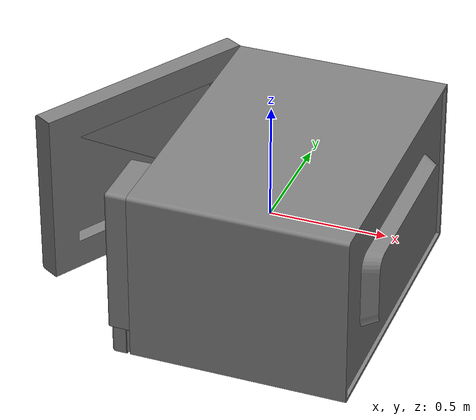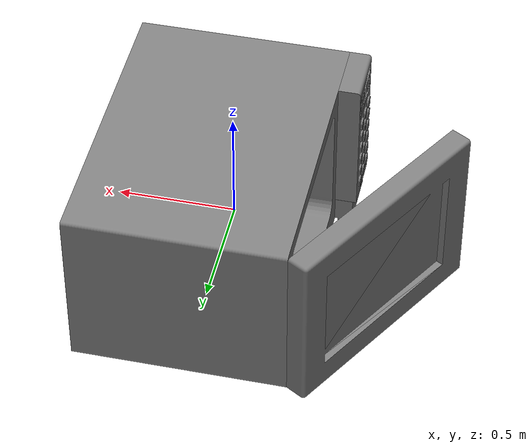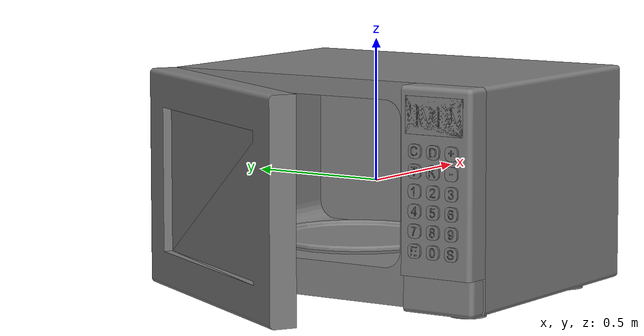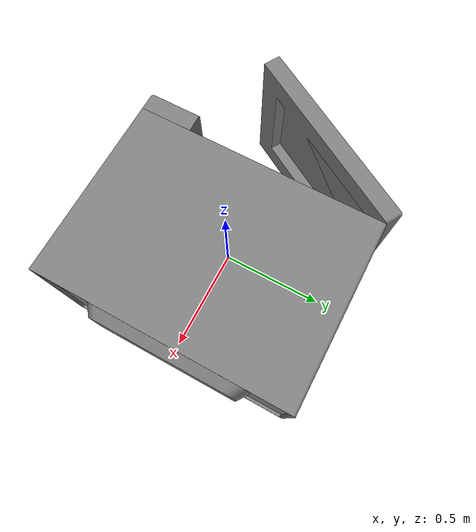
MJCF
<mujoco model="partnet_891f65c773939191c834958aed613724">
    <compiler angle="radian" />
    <size njmax="500" nconmax="100" />
    <asset>
        <mesh name="new-6" file="new-6.stl" />
        <mesh name="new-5" file="new-5.stl" />
        <mesh name="original-3" file="original-3.stl" />
        <mesh name="original-4" file="original-4.stl" />
        <mesh name="original-41" file="original-41.stl" />
        <mesh name="original-36" file="original-36.stl" />
        <mesh name="original-35" file="original-35.stl" />
        <mesh name="original-19" file="original-19.stl" />
        <mesh name="original-42" file="original-42.stl" />
        <mesh name="original-34" file="original-34.stl" />
        <mesh name="original-31" file="original-31.stl" />
        <mesh name="original-18" file="original-18.stl" />
        <mesh name="original-17" file="original-17.stl" />
        <mesh name="original-33" file="original-33.stl" />
        <mesh name="original-32" file="original-32.stl" />
        <mesh name="original-16" file="original-16.stl" />
        <mesh name="original-15" file="original-15.stl" />
        <mesh name="original-30" file="original-30.stl" />
        <mesh name="original-14" file="original-14.stl" />
        <mesh name="original-29" file="original-29.stl" />
        <mesh name="original-40" file="original-40.stl" />
        <mesh name="original-13" file="original-13.stl" />
        <mesh name="original-39" file="original-39.stl" />
        <mesh name="original-22" file="original-22.stl" />
        <mesh name="original-20" file="original-20.stl" />
        <mesh name="original-38" file="original-38.stl" />
        <mesh name="original-23" file="original-23.stl" />
        <mesh name="original-37" file="original-37.stl" />
        <mesh name="original-48" file="original-48.stl" />
        <mesh name="original-21" file="original-21.stl" />
        <mesh name="original-46" file="original-46.stl" />
        <mesh name="original-27" file="original-27.stl" />
        <mesh name="original-28" file="original-28.stl" />
        <mesh name="original-45" file="original-45.stl" />
        <mesh name="original-47" file="original-47.stl" />
        <mesh name="original-25" file="original-25.stl" />
        <mesh name="original-44" file="original-44.stl" />
        <mesh name="original-24" file="original-24.stl" />
        <mesh name="original-43" file="original-43.stl" />
        <mesh name="original-26" file="original-26.stl" />
        <mesh name="original-10" file="original-10.stl" />
        <mesh name="original-12" file="original-12.stl" />
        <mesh name="new-4" file="new-4.stl" />
        <mesh name="original-49" file="original-49.stl" />
        <mesh name="original-51" file="original-51.stl" />
        <mesh name="original-1" file="original-1.stl" />
        <mesh name="original-50" file="original-50.stl" />
        <mesh name="new-3" file="new-3.stl" />
        <mesh name="new-2" file="new-2.stl" />
        <mesh name="new-1" file="new-1.stl" />
        <mesh name="new-0" file="new-0.stl" />
    </asset>
    <worldbody>
    <body>
        <body name="object">
        <geom quat="0.5 0.5 -0.5 -0.5" type="mesh" group="0" mesh="original-12" conaffinity="0" contype="0"/>
        <geom quat="0.5 0.5 -0.5 -0.5" type="mesh" group="0" mesh="new-4" conaffinity="0" contype="0" />
        <geom quat="0.5 0.5 -0.5 -0.5" type="mesh" group="0" mesh="original-49" conaffinity="0" contype="0"/>
        <geom quat="0.5 0.5 -0.5 -0.5" type="mesh" group="0" mesh="original-51" conaffinity="0" contype="0"/>
        <geom quat="0.5 0.5 -0.5 -0.5" type="mesh" group="0" mesh="original-1" conaffinity="0" contype="0"/>
        <geom quat="0.5 0.5 -0.5 -0.5" type="mesh" group="0" mesh="original-50" conaffinity="0" contype="0"/>
        <geom quat="0.5 0.5 -0.5 -0.5" type="mesh" group="0" mesh="new-3" conaffinity="0" contype="0"/>
        <geom quat="0.5 0.5 -0.5 -0.5" type="mesh" group="0" mesh="new-2" conaffinity="0" contype="0"/>
        <geom quat="0.5 0.5 -0.5 -0.5" type="mesh" group="0" mesh="new-1" conaffinity="0" contype="0"/>
        <geom quat="0.5 0.5 -0.5 -0.5" type="mesh" group="0" mesh="new-0" conaffinity="0" contype="0"/>
        <body name="link_0" pos="-0.359218 0.618785 0" quat="0.5 0.5 -0.5 -0.5">
            <inertial pos="0.414829 0.0166444 0.298924" quat="0.00349468 0.499467 -0.00703786 0.866297" mass="72.4061" diaginertia="9.0744 5.85664 3.30306" />
            <joint name="joint_0" pos="0 0 0" axis="0 -1 0" limited="true" range="-0.523599 1.39626" />
            <geom name="panel" pos="0.618785 0 -0.359218" type="mesh" group="0" mesh="new-6" />
            <geom pos="0.618785 0 -0.359218" type="mesh" group="0" mesh="new-5" />
            <geom pos="0.618785 0 -0.359218" type="mesh" group="0" mesh="original-3" />
            <geom pos="0.618785 0 -0.359218" type="mesh" group="0" mesh="original-4" />
        </body>
        <body name="link_1" pos="-0.455784 -0.541882 -0.22907" quat="0.5 0.5 -0.5 -0.5">
            <inertial pos="0.0525268 0.0782934 0.00494252" quat="0.416789 0.571373 -0.416729 0.571101" mass="0.0153622" diaginertia="5.42181e-06 2.78238e-06 2.76854e-06" />
            <joint name="joint_1" pos="0 0 0" axis="0 0 -1" type="slide" limited="true" range="0 0.004" />
            <geom pos="-0.541882 0.22907 -0.455784" type="mesh" group="0" mesh="original-41" />
            <geom pos="-0.541882 0.22907 -0.455784" type="mesh" group="0" mesh="original-36" />
        </body>
        <body name="link_2" pos="-0.455784 -0.541882 -0.22907" quat="0.5 0.5 -0.5 -0.5">
            <inertial pos="-0.0188435 0.0782797 0.00492333" quat="0.523586 0.475286 -0.523487 0.475312" mass="0.0152598" diaginertia="5.40253e-06 2.76766e-06 2.76238e-06" />
            <joint name="joint_2" pos="0 0 0" axis="0 0 -1" type="slide" limited="true" range="0 0.004" />
            <geom pos="-0.541882 0.22907 -0.455784" type="mesh" group="0" mesh="original-35" />
            <geom pos="-0.541882 0.22907 -0.455784" type="mesh" group="0" mesh="original-19" />
        </body>
        <body name="link_3" pos="-0.455784 -0.541882 -0.22907" quat="0.5 0.5 -0.5 -0.5">
            <inertial pos="-0.0902985 0.0782677 0.00495284" quat="0.511133 0.489369 -0.510207 0.488824" mass="0.0154119" diaginertia="5.43794e-06 2.79688e-06 2.77117e-06" />
            <joint name="joint_3" pos="0 0 0" axis="0 0 -1" type="slide" limited="true" range="0 0.004" />
            <geom pos="-0.541882 0.22907 -0.455784" type="mesh" group="0" mesh="original-42" />
            <geom pos="-0.541882 0.22907 -0.455784" type="mesh" group="0" mesh="original-34" />
        </body>
        <body name="link_4" pos="-0.455784 -0.541882 -0.22907" quat="0.5 0.5 -0.5 -0.5">
            <inertial pos="0.0525505 0.144933 0.00491951" quat="0.433322 0.558723 -0.433633 0.55859" mass="0.015244" diaginertia="5.40095e-06 2.76746e-06 2.76057e-06" />
            <joint name="joint_4" pos="0 0 0" axis="0 0 -1" type="slide" limited="true" range="0 0.004" />
            <geom pos="-0.541882 0.22907 -0.455784" type="mesh" group="0" mesh="original-31" />
            <geom pos="-0.541882 0.22907 -0.455784" type="mesh" group="0" mesh="original-18" />
        </body>
        <body name="link_5" pos="-0.455784 -0.541882 -0.22907" quat="0.5 0.5 -0.5 -0.5">
            <inertial pos="-0.0188408 0.144906 0.00492199" quat="0.50045 0.499561 -0.500384 0.499604" mass="0.0152543" diaginertia="5.40253e-06 2.76929e-06 2.76059e-06" />
            <joint name="joint_5" pos="0 0 0" axis="0 0 -1" type="slide" limited="true" range="0 0.004" />
            <geom pos="-0.541882 0.22907 -0.455784" type="mesh" group="0" mesh="original-17" />
            <geom pos="-0.541882 0.22907 -0.455784" type="mesh" group="0" mesh="original-33" />
        </body>
        <body name="link_6" pos="-0.455784 -0.541882 -0.22907" quat="0.5 0.5 -0.5 -0.5">
            <inertial pos="-0.0902233 0.145003 0.00491762" quat="0.538897 0.4578 -0.539781 0.456777" mass="0.0152383" diaginertia="5.41307e-06 2.78393e-06 2.75593e-06" />
            <joint name="joint_6" pos="0 0 0" axis="0 0 -1" type="slide" limited="true" range="0 0.004" />
            <geom pos="-0.541882 0.22907 -0.455784" type="mesh" group="0" mesh="original-32" />
            <geom pos="-0.541882 0.22907 -0.455784" type="mesh" group="0" mesh="original-16" />
        </body>
        <body name="link_7" pos="-0.455784 -0.541882 -0.22907" quat="0.5 0.5 -0.5 -0.5">
            <inertial pos="0.0525354 0.211524 0.00492121" quat="0.498386 0.501707 -0.498157 0.501738" mass="0.0152511" diaginertia="5.40133e-06 2.76679e-06 2.76181e-06" />
            <joint name="joint_7" pos="0 0 0" axis="0 0 -1" type="slide" limited="true" range="0 0.004" />
            <geom pos="-0.541882 0.22907 -0.455784" type="mesh" group="0" mesh="original-15" />
            <geom pos="-0.541882 0.22907 -0.455784" type="mesh" group="0" mesh="original-30" />
        </body>
        <body name="link_8" pos="-0.455784 -0.541882 -0.22907" quat="0.5 0.5 -0.5 -0.5">
            <inertial pos="-0.0188068 0.211507 0.00492189" quat="0.460979 0.535865 -0.460969 0.536521" mass="0.0152547" diaginertia="5.40482e-06 2.77216e-06 2.75997e-06" />
            <joint name="joint_8" pos="0 0 0" axis="0 0 -1" type="slide" limited="true" range="0 0.004" />
            <geom pos="-0.541882 0.22907 -0.455784" type="mesh" group="0" mesh="original-14" />
            <geom pos="-0.541882 0.22907 -0.455784" type="mesh" group="0" mesh="original-29" />
        </body>
        <body name="link_9" pos="-0.455784 -0.541882 -0.22907" quat="0.5 0.5 -0.5 -0.5">
            <inertial pos="-0.0901986 0.211528 0.00490226" quat="0.493278 0.506366 -0.493456 0.506726" mass="0.0151735" diaginertia="5.39223e-06 2.76187e-06 2.75547e-06" />
            <joint name="joint_9" pos="0 0 0" axis="0 0 -1" type="slide" limited="true" range="0 0.004" />
            <geom pos="-0.541882 0.22907 -0.455784" type="mesh" group="0" mesh="original-40" />
            <geom pos="-0.541882 0.22907 -0.455784" type="mesh" group="0" mesh="original-13" />
        </body>
        <body name="link_10" pos="-0.455784 -0.541882 -0.22907" quat="0.5 0.5 -0.5 -0.5">
            <inertial pos="0.0525762 0.27815 0.00492342" quat="0.476989 0.52168 -0.477166 0.522153" mass="0.0152608" diaginertia="5.40687e-06 2.77474e-06 2.75963e-06" />
            <joint name="joint_10" pos="0 0 0" axis="0 0 -1" type="slide" limited="true" range="0 0.004" />
            <geom pos="-0.541882 0.22907 -0.455784" type="mesh" group="0" mesh="original-39" />
            <geom pos="-0.541882 0.22907 -0.455784" type="mesh" group="0" mesh="original-22" />
        </body>
        <body name="link_11" pos="-0.455784 -0.541882 -0.22907" quat="0.5 0.5 -0.5 -0.5">
            <inertial pos="-0.018806 0.278119 0.00493691" quat="0.515069 0.484096 -0.515002 0.4849" mass="0.015318" diaginertia="5.42126e-06 2.78827e-06 2.76198e-06" />
            <joint name="joint_11" pos="0 0 0" axis="0 0 -1" type="slide" limited="true" range="0 0.004" />
            <geom pos="-0.541882 0.22907 -0.455784" type="mesh" group="0" mesh="original-20" />
            <geom pos="-0.541882 0.22907 -0.455784" type="mesh" group="0" mesh="original-38" />
        </body>
        <body name="link_12" pos="-0.455784 -0.541882 -0.22907" quat="0.5 0.5 -0.5 -0.5">
            <inertial pos="-0.0902546 0.278197 0.00488226" quat="0.424816 0.565551 -0.424962 0.56488" mass="0.0150911" diaginertia="5.3894e-06 2.76162e-06 2.75066e-06" />
            <joint name="joint_12" pos="0 0 0" axis="0 0 -1" type="slide" limited="true" range="0 0.004" />
            <geom pos="-0.541882 0.22907 -0.455784" type="mesh" group="0" mesh="original-23" />
            <geom pos="-0.541882 0.22907 -0.455784" type="mesh" group="0" mesh="original-37" />
        </body>
        <body name="link_13" pos="-0.455784 -0.541882 -0.22907" quat="0.5 0.5 -0.5 -0.5">
            <inertial pos="0.0525448 0.344788 0.00484603" quat="1.15734e-06 0.707107 1.15734e-06 0.707107" mass="0.0149451" diaginertia="5.37555e-06 2.74744e-06 2.74693e-06" />
            <joint name="joint_13" pos="0 0 0" axis="0 0 -1" type="slide" limited="true" range="0 0.004" />
            <geom pos="-0.541882 0.22907 -0.455784" type="mesh" group="0" mesh="original-48" />
            <geom pos="-0.541882 0.22907 -0.455784" type="mesh" group="0" mesh="original-21" />
        </body>
        <body name="link_14" pos="-0.455784 -0.541882 -0.22907" quat="0.5 0.5 -0.5 -0.5">
            <inertial pos="-0.0190398 0.344761 0.00495282" quat="-0.0488533 0.706881 0.0490433 0.703937" mass="0.0153893" diaginertia="5.4433e-06 2.79118e-06 2.78271e-06" />
            <joint name="joint_14" pos="0 0 0" axis="0 0 -1" type="slide" limited="true" range="0 0.004" />
            <geom pos="-0.541882 0.22907 -0.455784" type="mesh" group="0" mesh="original-46" />
            <geom pos="-0.541882 0.22907 -0.455784" type="mesh" group="0" mesh="original-27" />
        </body>
        <body name="link_15" pos="-0.455784 -0.541882 -0.22907" quat="0.5 0.5 -0.5 -0.5">
            <inertial pos="-0.0901969 0.345031 0.00493707" quat="0.526718 0.471473 -0.529363 0.469101" mass="0.0153223" diaginertia="5.447e-06 2.81288e-06 2.76291e-06" />
            <joint name="joint_15" pos="0 0 0" axis="0 0 -1" type="slide" limited="true" range="0 0.004" />
            <geom pos="-0.541882 0.22907 -0.455784" type="mesh" group="0" mesh="original-28" />
            <geom pos="-0.541882 0.22907 -0.455784" type="mesh" group="0" mesh="original-45" />
        </body>
        <body name="link_16" pos="-0.455784 -0.541882 -0.22907" quat="0.5 0.5 -0.5 -0.5">
            <inertial pos="0.0525477 0.411444 0.00487455" quat="0.521185 0.477846 -0.521504 0.47756" mass="0.0150669" diaginertia="5.38168e-06 2.7526e-06 2.75092e-06" />
            <joint name="joint_16" pos="0 0 0" axis="0 0 -1" type="slide" limited="true" range="0 0.004" />
            <geom pos="-0.541882 0.22907 -0.455784" type="mesh" group="0" mesh="original-47" />
            <geom pos="-0.541882 0.22907 -0.455784" type="mesh" group="0" mesh="original-25" />
        </body>
        <body name="link_17" pos="-0.455784 -0.541882 -0.22907" quat="0.5 0.5 -0.5 -0.5">
            <inertial pos="-0.0187233 0.411399 0.00495249" quat="0.00340111 0.706275 -0.00319812 0.707922" mass="0.0154076" diaginertia="5.43481e-06 2.78378e-06 2.78115e-06" />
            <joint name="joint_17" pos="0 0 0" axis="0 0 -1" type="slide" limited="true" range="0 0.004" />
            <geom pos="-0.541882 0.22907 -0.455784" type="mesh" group="0" mesh="original-44" />
            <geom pos="-0.541882 0.22907 -0.455784" type="mesh" group="0" mesh="original-24" />
        </body>
        <body name="link_18" pos="-0.455784 -0.541882 -0.22907" quat="0.5 0.5 -0.5 -0.5">
            <inertial pos="-0.0903206 0.411412 0.00495393" quat="-0.00870997 0.707735 0.00871353 0.706371" mass="0.0154121" diaginertia="5.43422e-06 2.78341e-06 2.78114e-06" />
            <joint name="joint_18" pos="0 0 0" axis="0 0 -1" type="slide" limited="true" range="0 0.004" />
            <geom pos="-0.541882 0.22907 -0.455784" type="mesh" group="0" mesh="original-43" />
            <geom pos="-0.541882 0.22907 -0.455784" type="mesh" group="0" mesh="original-26" />
        </body>
        <body name="link_19" pos="0.0518395 0.111487 0" quat="0.5 0.5 -0.5 -0.5">
            <inertial pos="-5.69581e-08 -0.222454 -3.02447e-09" quat="0.707107 0 0 0.707107" mass="8.33956" diaginertia="0.417774 0.209422 0.209422" />
            <joint name="joint_19" pos="0 0 0" axis="0 1 0" />
            <geom pos="0.111487 0 0.0518395" type="mesh" group="0" mesh="original-10" />
        </body>
    </body>
        <site name="bottom_site" pos="0 0 -0.3" rgba="0 0 0 0" size="0.005"/>
        <site name="top_site" pos="0 0 0.3" rgba="0 0 0 0" size="0.005"/>
        <site name="horizontal_radius_site" pos="0.3 0 0" rgba="0 0 0 0" size="0.1"/>
    </body>
    </worldbody>
</mujoco>
